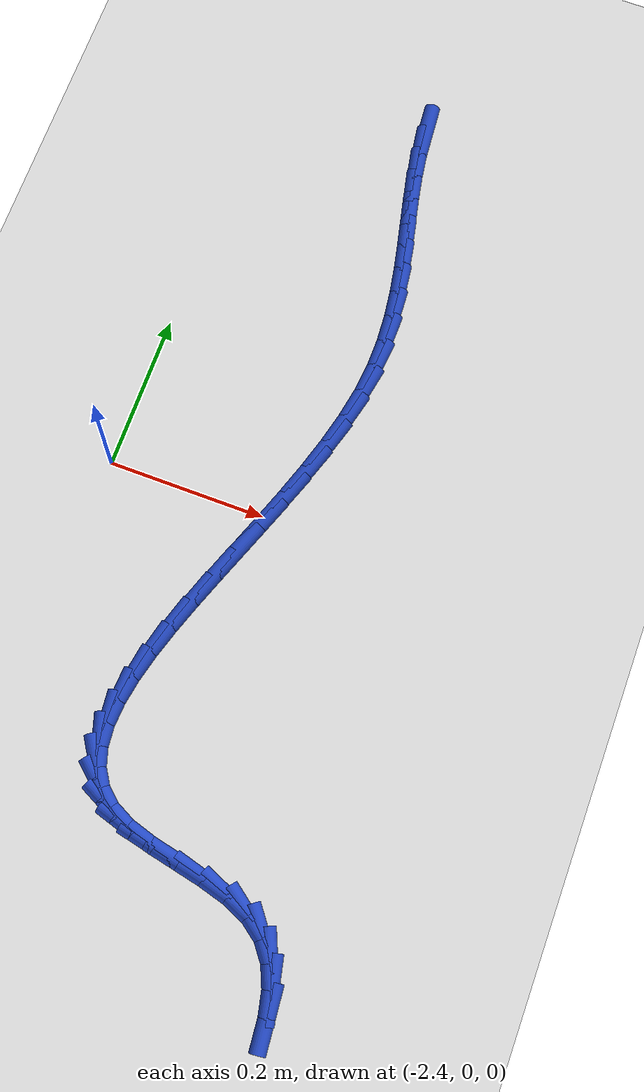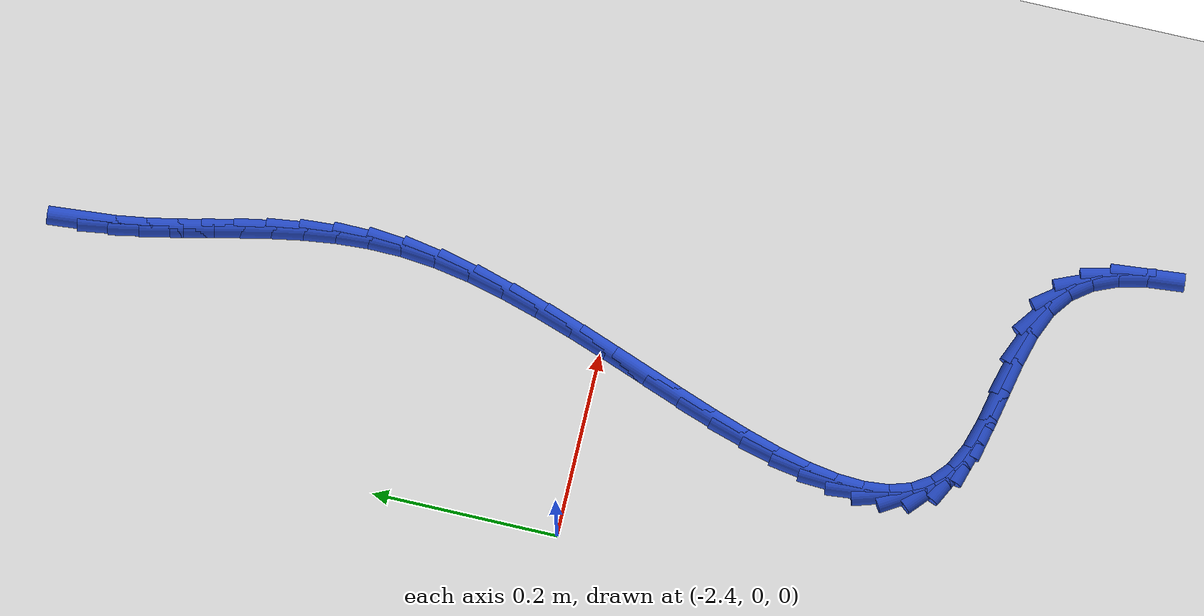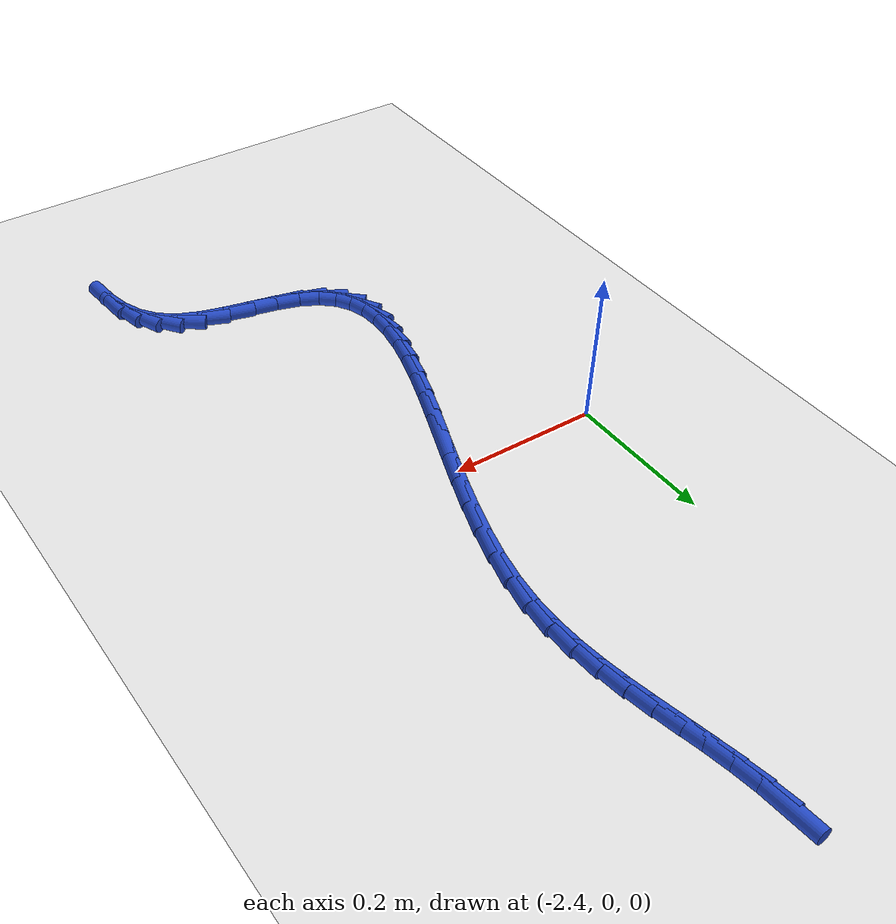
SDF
<sdf version="1.6">
 <world name="default">
  <model name="ground_plane">
   <static>1</static>
   <link name="link">
    <collision name="collision">
     <geometry><plane><normal>0 0 1</normal><size>100 100</size></plane></geometry>
     <surface><friction><ode><mu>100</mu><mu2>50</mu2></ode></friction></surface>
    </collision>
    <visual name="visual">
     <cast_shadows>0</cast_shadows>
     <geometry><plane><normal>0 0 1</normal><size>100 100</size></plane></geometry>
     <material>
      <script><uri>file://media/materials/scripts/gazebo.material</uri><name>Gazebo/WhiteGlow</name></script>
     </material>
    </visual>
   </link>
  </model>
  <model name="line">
   <link name="link_97">
    <pose>-2.1830883250719926 0.5638111339267916 0.01 0 1.57 -1.4873723428790315</pose>
    <collision name="collision">
     <geometry><cylinder><radius>0.01</radius><length>0.08</length></cylinder></geometry>
    </collision>
    <visual name="visual">
     <material>
      <script><name>Gazebo/Blue</name><uri>file://media/materials/scripts/gazebo.material</uri></script>
     </material>
     <geometry><cylinder><radius>0.01</radius><length>0.08</length></cylinder></geometry>
    </visual>
   </link>
   <link name="link_98">
    <pose>-2.1803861581990485 0.5314955430835065 0.01 0 1.57 -1.4245663945332454</pose>
    <collision name="collision">
     <geometry><cylinder><radius>0.01</radius><length>0.08</length></cylinder></geometry>
    </collision>
    <visual name="visual">
     <material>
      <script><name>Gazebo/Blue</name><uri>file://media/materials/scripts/gazebo.material</uri></script>
     </material>
     <geometry><cylinder><radius>0.01</radius><length>0.08</length></cylinder></geometry>
    </visual>
   </link>
   <link name="link_99">
    <pose>-2.175651832944382 0.4993507422091896 0.01 0 1.57 -1.3811324248500432</pose>
    <collision name="collision">
     <geometry><cylinder><radius>0.01</radius><length>0.08</length></cylinder></geometry>
    </collision>
    <visual name="visual">
     <material>
      <script><name>Gazebo/Blue</name><uri>file://media/materials/scripts/gazebo.material</uri></script>
     </material>
     <geometry><cylinder><radius>0.01</radius><length>0.08</length></cylinder></geometry>
    </visual>
   </link>
   <link name="link_100">
    <pose>-2.16948222809838 0.46721258480379296 0.01 0 1.57 -1.3571138343836966</pose>
    <collision name="collision">
     <geometry><cylinder><radius>0.01</radius><length>0.08</length></cylinder></geometry>
    </collision>
    <visual name="visual">
     <material>
      <script><name>Gazebo/Blue</name><uri>file://media/materials/scripts/gazebo.material</uri></script>
     </material>
     <geometry><cylinder><radius>0.01</radius><length>0.08</length></cylinder></geometry>
    </visual>
   </link>
   <link name="link_101">
    <pose>-2.162474222451428 0.43491692436726714 0.01 0 1.57 -1.3520912542947696</pose>
    <collision name="collision">
     <geometry><cylinder><radius>0.01</radius><length>0.08</length></cylinder></geometry>
    </collision>
    <visual name="visual">
     <material>
      <script><name>Gazebo/Blue</name><uri>file://media/materials/scripts/gazebo.material</uri></script>
     </material>
     <geometry><cylinder><radius>0.01</radius><length>0.08</length></cylinder></geometry>
    </visual>
   </link>
   <link name="link_102">
    <pose>-2.155224694793912 0.4022996143995641 0.01 0 1.57 -1.3654678044096198</pose>
    <collision name="collision">
     <geometry><cylinder><radius>0.01</radius><length>0.08</length></cylinder></geometry>
    </collision>
    <visual name="visual">
     <material>
      <script><name>Gazebo/Blue</name><uri>file://media/materials/scripts/gazebo.material</uri></script>
     </material>
     <geometry><cylinder><radius>0.01</radius><length>0.08</length></cylinder></geometry>
    </visual>
   </link>
   <link name="link_103">
    <pose>-2.148330523916217 0.3691965084006341 0.01 0 1.57 -1.3965403445693998</pose>
    <collision name="collision">
     <geometry><cylinder><radius>0.01</radius><length>0.08</length></cylinder></geometry>
    </collision>
    <visual name="visual">
     <material>
      <script><name>Gazebo/Blue</name><uri>file://media/materials/scripts/gazebo.material</uri></script>
     </material>
     <geometry><cylinder><radius>0.01</radius><length>0.08</length></cylinder></geometry>
    </visual>
   </link>
   <link name="link_104">
    <pose>-2.142388588608731 0.3354434598704297 0.01 0 1.57 -1.4443930306435349</pose>
    <collision name="collision">
     <geometry><cylinder><radius>0.01</radius><length>0.08</length></cylinder></geometry>
    </collision>
    <visual name="visual">
     <material>
      <script><name>Gazebo/Blue</name><uri>file://media/materials/scripts/gazebo.material</uri></script>
     </material>
     <geometry><cylinder><radius>0.01</radius><length>0.08</length></cylinder></geometry>
    </visual>
   </link>
   <link name="link_105">
    <pose>-2.1379957676618386 0.30087632230890105 0.01 0 1.57 -1.5076701773665266</pose>
    <collision name="collision">
     <geometry><cylinder><radius>0.01</radius><length>0.08</length></cylinder></geometry>
    </collision>
    <visual name="visual">
     <material>
      <script><name>Gazebo/Blue</name><uri>file://media/materials/scripts/gazebo.material</uri></script>
     </material>
     <geometry><cylinder><radius>0.01</radius><length>0.08</length></cylinder></geometry>
    </visual>
   </link>
   <link name="link_106">
    <pose>-2.1357489398659255 0.2653309492160001 0.01 0 1.57 1.5572764502061163</pose>
    <collision name="collision">
     <geometry><cylinder><radius>0.01</radius><length>0.08</length></cylinder></geometry>
    </collision>
    <visual name="visual">
     <material>
      <script><name>Gazebo/Blue</name><uri>file://media/materials/scripts/gazebo.material</uri></script>
     </material>
     <geometry><cylinder><radius>0.01</radius><length>0.08</length></cylinder></geometry>
    </visual>
   </link>
   <link name="link_107">
    <pose>-2.136244984011378 0.2286431940916781 0.01 0 1.57 1.4707002952762005</pose>
    <collision name="collision">
     <geometry><cylinder><radius>0.01</radius><length>0.08</length></cylinder></geometry>
    </collision>
    <visual name="visual">
     <material>
      <script><name>Gazebo/Blue</name><uri>file://media/materials/scripts/gazebo.material</uri></script>
     </material>
     <geometry><cylinder><radius>0.01</radius><length>0.08</length></cylinder></geometry>
    </visual>
   </link>
   <link name="link_108">
    <pose>-2.140059976318339 0.1906572454576275 0.01 0 1.57 1.3901647652088673</pose>
    <collision name="collision">
     <geometry><cylinder><radius>0.01</radius><length>0.08</length></cylinder></geometry>
    </collision>
    <visual name="visual">
     <material>
      <script><name>Gazebo/Blue</name><uri>file://media/materials/scripts/gazebo.material</uri></script>
     </material>
     <geometry><cylinder><radius>0.01</radius><length>0.08</length></cylinder></geometry>
    </visual>
   </link>
   <link name="link_109">
    <pose>-2.1472225233527995 0.15143664797360404 0.01 0 1.57 1.3279055671186528</pose>
    <collision name="collision">
     <geometry><cylinder><radius>0.01</radius><length>0.08</length></cylinder></geometry>
    </collision>
    <visual name="visual">
     <material>
      <script><name>Gazebo/Blue</name><uri>file://media/materials/scripts/gazebo.material</uri></script>
     </material>
     <geometry><cylinder><radius>0.01</radius><length>0.08</length></cylinder></geometry>
    </visual>
   </link>
   <link name="link_110">
    <pose>-2.157172434927824 0.11128086107718843 0.01 0 1.57 1.281274399755986</pose>
    <collision name="collision">
     <geometry><cylinder><radius>0.01</radius><length>0.08</length></cylinder></geometry>
    </collision>
    <visual name="visual">
     <material>
      <script><name>Gazebo/Blue</name><uri>file://media/materials/scripts/gazebo.material</uri></script>
     </material>
     <geometry><cylinder><radius>0.01</radius><length>0.08</length></cylinder></geometry>
    </visual>
   </link>
   <link name="link_111">
    <pose>-2.169320439141715 0.0705009964547947 0.01 0 1.57 1.2477494343761695</pose>
    <collision name="collision">
     <geometry><cylinder><radius>0.01</radius><length>0.08</length></cylinder></geometry>
    </collision>
    <visual name="visual">
     <material>
      <script><name>Gazebo/Blue</name><uri>file://media/materials/scripts/gazebo.material</uri></script>
     </material>
     <geometry><cylinder><radius>0.01</radius><length>0.08</length></cylinder></geometry>
    </visual>
   </link>
   <link name="link_112">
    <pose>-2.183077264092776 0.029408165792835065 0.01 0 1.57 1.225622371358909</pose>
    <collision name="collision">
     <geometry><cylinder><radius>0.01</radius><length>0.08</length></cylinder></geometry>
    </collision>
    <visual name="visual">
     <material>
      <script><name>Gazebo/Blue</name><uri>file://media/materials/scripts/gazebo.material</uri></script>
     </material>
     <geometry><cylinder><radius>0.01</radius><length>0.08</length></cylinder></geometry>
    </visual>
   </link>
   <link name="link_113">
    <pose>-2.197853637879311 -0.011686519222276256 0.01 0 1.57 1.2139161380186019</pose>
    <collision name="collision">
     <geometry><cylinder><radius>0.01</radius><length>0.08</length></cylinder></geometry>
    </collision>
    <visual name="visual">
     <material>
      <script><name>Gazebo/Blue</name><uri>file://media/materials/scripts/gazebo.material</uri></script>
     </material>
     <geometry><cylinder><radius>0.01</radius><length>0.08</length></cylinder></geometry>
    </visual>
   </link>
   <link name="link_114">
    <pose>-2.2130602885996224 -0.052471946904127105 0.01 0 1.57 1.212336546922561</pose>
    <collision name="collision">
     <geometry><cylinder><radius>0.01</radius><length>0.08</length></cylinder></geometry>
    </collision>
    <visual name="visual">
     <material>
      <script><name>Gazebo/Blue</name><uri>file://media/materials/scripts/gazebo.material</uri></script>
     </material>
     <geometry><cylinder><radius>0.01</radius><length>0.08</length></cylinder></geometry>
    </visual>
   </link>
   <link name="link_115">
    <pose>-2.2281079443520135 -0.09263700556630342 0.01 0 1.57 1.221290891701732</pose>
    <collision name="collision">
     <geometry><cylinder><radius>0.01</radius><length>0.08</length></cylinder></geometry>
    </collision>
    <visual name="visual">
     <material>
      <script><name>Gazebo/Blue</name><uri>file://media/materials/scripts/gazebo.material</uri></script>
     </material>
     <geometry><cylinder><radius>0.01</radius><length>0.08</length></cylinder></geometry>
    </visual>
   </link>
   <link name="link_116">
    <pose>-2.2424073332347882 -0.1318705835223924 0.01 0 1.57 1.2419984542996692</pose>
    <collision name="collision">
     <geometry><cylinder><radius>0.01</radius><length>0.08</length></cylinder></geometry>
    </collision>
    <visual name="visual">
     <material>
      <script><name>Gazebo/Blue</name><uri>file://media/materials/scripts/gazebo.material</uri></script>
     </material>
     <geometry><cylinder><radius>0.01</radius><length>0.08</length></cylinder></geometry>
    </visual>
   </link>
   <link name="link_117">
    <pose>-2.2553691833462497 -0.16986156908598188 0.01 0 1.57 1.2767266889854543</pose>
    <collision name="collision">
     <geometry><cylinder><radius>0.01</radius><length>0.08</length></cylinder></geometry>
    </collision>
    <visual name="visual">
     <material>
      <script><name>Gazebo/Blue</name><uri>file://media/materials/scripts/gazebo.material</uri></script>
     </material>
     <geometry><cylinder><radius>0.01</radius><length>0.08</length></cylinder></geometry>
    </visual>
   </link>
   <link name="link_118">
    <pose>-2.266404222784701 -0.2062988505706568 0.01 0 1.57 1.3292005419634794</pose>
    <collision name="collision">
     <geometry><cylinder><radius>0.01</radius><length>0.08</length></cylinder></geometry>
    </collision>
    <visual name="visual">
     <material>
      <script><name>Gazebo/Blue</name><uri>file://media/materials/scripts/gazebo.material</uri></script>
     </material>
     <geometry><cylinder><radius>0.01</radius><length>0.08</length></cylinder></geometry>
    </visual>
   </link>
   <link name="link_119">
    <pose>-2.2749231796484453 -0.24087131629000494 0.01 0 1.57 1.405221828040967</pose>
    <collision name="collision">
     <geometry><cylinder><radius>0.01</radius><length>0.08</length></cylinder></geometry>
    </collision>
    <visual name="visual">
     <material>
      <script><name>Gazebo/Blue</name><uri>file://media/materials/scripts/gazebo.material</uri></script>
     </material>
     <geometry><cylinder><radius>0.01</radius><length>0.08</length></cylinder></geometry>
    </visual>
   </link>
   <link name="link_120">
    <pose>-2.2803367820357874 -0.2732678545576132 0.01 0 1.57 1.5133869032643774</pose>
    <collision name="collision">
     <geometry><cylinder><radius>0.01</radius><length>0.08</length></cylinder></geometry>
    </collision>
    <visual name="visual">
     <material>
      <script><name>Gazebo/Blue</name><uri>file://media/materials/scripts/gazebo.material</uri></script>
     </material>
     <geometry><cylinder><radius>0.01</radius><length>0.08</length></cylinder></geometry>
    </visual>
   </link>
   <link name="link_121">
    <pose>-2.2820557580450287 -0.3031773536870683 0.01 0 1.57 -1.4764701187946794</pose>
    <collision name="collision">
     <geometry><cylinder><radius>0.01</radius><length>0.08</length></cylinder></geometry>
    </collision>
    <visual name="visual">
     <material>
      <script><name>Gazebo/Blue</name><uri>file://media/materials/scripts/gazebo.material</uri></script>
     </material>
     <geometry><cylinder><radius>0.01</radius><length>0.08</length></cylinder></geometry>
    </visual>
   </link>
   <link name="link_122">
    <pose>-2.2794908357744736 -0.3302887019919578 0.01 0 1.57 -1.2702877433536366</pose>
    <collision name="collision">
     <geometry><cylinder><radius>0.01</radius><length>0.08</length></cylinder></geometry>
    </collision>
    <visual name="visual">
     <material>
      <script><name>Gazebo/Blue</name><uri>file://media/materials/scripts/gazebo.material</uri></script>
     </material>
     <geometry><cylinder><radius>0.01</radius><length>0.08</length></cylinder></geometry>
    </visual>
   </link>
   <link name="link_123">
    <pose>-2.2720527433224253 -0.35429078778586715 0.01 0 1.57 -1.0109065470359642</pose>
    <collision name="collision">
     <geometry><cylinder><radius>0.01</radius><length>0.08</length></cylinder></geometry>
    </collision>
    <visual name="visual">
     <material>
      <script><name>Gazebo/Blue</name><uri>file://media/materials/scripts/gazebo.material</uri></script>
     </material>
     <geometry><cylinder><radius>0.01</radius><length>0.08</length></cylinder></geometry>
    </visual>
   </link>
   <link name="link_124">
    <pose>-2.2591522087871874 -0.374872499382384 0.01 0 1.57 -0.7267538219194569</pose>
    <collision name="collision">
     <geometry><cylinder><radius>0.01</radius><length>0.08</length></cylinder></geometry>
    </collision>
    <visual name="visual">
     <material>
      <script><name>Gazebo/Blue</name><uri>file://media/materials/scripts/gazebo.material</uri></script>
     </material>
     <geometry><cylinder><radius>0.01</radius><length>0.08</length></cylinder></geometry>
    </visual>
   </link>
   <link name="link_125">
    <pose>-2.240199960267062 -0.39172272509509487 0.01 0 1.57 -0.4649479386295041</pose>
    <collision name="collision">
     <geometry><cylinder><radius>0.01</radius><length>0.08</length></cylinder></geometry>
    </collision>
    <visual name="visual">
     <material>
      <script><name>Gazebo/Blue</name><uri>file://media/materials/scripts/gazebo.material</uri></script>
     </material>
     <geometry><cylinder><radius>0.01</radius><length>0.08</length></cylinder></geometry>
    </visual>
   </link>
   <link name="link_126">
    <pose>-2.2146334870794115 -0.40454754480146776 0.01 0 1.57 -0.2876555128389898</pose>
    <collision name="collision">
     <geometry><cylinder><radius>0.01</radius><length>0.08</length></cylinder></geometry>
    </collision>
    <visual name="visual">
     <material>
      <script><name>Gazebo/Blue</name><uri>file://media/materials/scripts/gazebo.material</uri></script>
     </material>
     <geometry><cylinder><radius>0.01</radius><length>0.08</length></cylinder></geometry>
    </visual>
   </link>
   <link name="link_127">
    <pose>-2.18314999944809 -0.4138622904682972 0.01 0 1.57 -0.21045043300761498</pose>
    <collision name="collision">
     <geometry><cylinder><radius>0.01</radius><length>0.08</length></cylinder></geometry>
    </collision>
    <visual name="visual">
     <material>
      <script><name>Gazebo/Blue</name><uri>file://media/materials/scripts/gazebo.material</uri></script>
     </material>
     <geometry><cylinder><radius>0.01</radius><length>0.08</length></cylinder></geometry>
    </visual>
   </link>
   <link name="link_128">
    <pose>-2.1482227317406135 -0.42132322237558484 0.01 0 1.57 -0.20267503682329904</pose>
    <collision name="collision">
     <geometry><cylinder><radius>0.01</radius><length>0.08</length></cylinder></geometry>
    </collision>
    <visual name="visual">
     <material>
      <script><name>Gazebo/Blue</name><uri>file://media/materials/scripts/gazebo.material</uri></script>
     </material>
     <geometry><cylinder><radius>0.01</radius><length>0.08</length></cylinder></geometry>
    </visual>
   </link>
   <link name="link_129">
    <pose>-2.1124587745100833 -0.4286725908010341 0.01 0 1.57 -0.25826941410369075</pose>
    <collision name="collision">
     <geometry><cylinder><radius>0.01</radius><length>0.08</length></cylinder></geometry>
    </collision>
    <visual name="visual">
     <material>
      <script><name>Gazebo/Blue</name><uri>file://media/materials/scripts/gazebo.material</uri></script>
     </material>
     <geometry><cylinder><radius>0.01</radius><length>0.08</length></cylinder></geometry>
    </visual>
   </link>
   <link name="link_130">
    <pose>-2.078465218309602 -0.4376526460223482 0.01 0 1.57 -0.3951640828044933</pose>
    <collision name="collision">
     <geometry><cylinder><radius>0.01</radius><length>0.08</length></cylinder></geometry>
    </collision>
    <visual name="visual">
     <material>
      <script><name>Gazebo/Blue</name><uri>file://media/materials/scripts/gazebo.material</uri></script>
     </material>
     <geometry><cylinder><radius>0.01</radius><length>0.08</length></cylinder></geometry>
    </visual>
   </link>
   <link name="link_131">
    <pose>-2.048849153692269 -0.4500056383172307 0.01 0 1.57 -0.6403962982192616</pose>
    <collision name="collision">
     <geometry><cylinder><radius>0.01</radius><length>0.08</length></cylinder></geometry>
    </collision>
    <visual name="visual">
     <material>
      <script><name>Gazebo/Blue</name><uri>file://media/materials/scripts/gazebo.material</uri></script>
     </material>
     <geometry><cylinder><radius>0.01</radius><length>0.08</length></cylinder></geometry>
    </visual>
   </link>
   <link name="link_132">
    <pose>-2.025776353039335 -0.46719856618447503 0.01 0 1.57 -0.9228445035836091</pose>
    <collision name="collision">
     <geometry><cylinder><radius>0.01</radius><length>0.08</length></cylinder></geometry>
    </collision>
    <visual name="visual">
     <material>
      <script><name>Gazebo/Blue</name><uri>file://media/materials/scripts/gazebo.material</uri></script>
     </material>
     <geometry><cylinder><radius>0.01</radius><length>0.08</length></cylinder></geometry>
    </visual>
   </link>
   <link name="link_133">
    <pose>-2.009085956617902 -0.48924729905289677 0.01 0 1.57 -1.1691131037223836</pose>
    <collision name="collision">
     <geometry><cylinder><radius>0.01</radius><length>0.08</length></cylinder></geometry>
    </collision>
    <visual name="visual">
     <material>
      <script><name>Gazebo/Blue</name><uri>file://media/materials/scripts/gazebo.material</uri></script>
     </material>
     <geometry><cylinder><radius>0.01</radius><length>0.08</length></cylinder></geometry>
    </visual>
   </link>
   <link name="link_134">
    <pose>-1.9978531413752258 -0.5156912195981675 0.01 0 1.57 -1.3537027767617655</pose>
    <collision name="collision">
     <geometry><cylinder><radius>0.01</radius><length>0.08</length></cylinder></geometry>
    </collision>
    <visual name="visual">
     <material>
      <script><name>Gazebo/Blue</name><uri>file://media/materials/scripts/gazebo.material</uri></script>
     </material>
     <geometry><cylinder><radius>0.01</radius><length>0.08</length></cylinder></geometry>
    </visual>
   </link>
   <link name="link_135">
    <pose>-1.991152631838855 -0.5460694283201124 0.01 0 1.57 -1.4796658850163518</pose>
    <collision name="collision">
     <geometry><cylinder><radius>0.01</radius><length>0.08</length></cylinder></geometry>
    </collision>
    <visual name="visual">
     <material>
      <script><name>Gazebo/Blue</name><uri>file://media/materials/scripts/gazebo.material</uri></script>
     </material>
     <geometry><cylinder><radius>0.01</radius><length>0.08</length></cylinder></geometry>
    </visual>
   </link>
  </model>
 </world>
</sdf>
